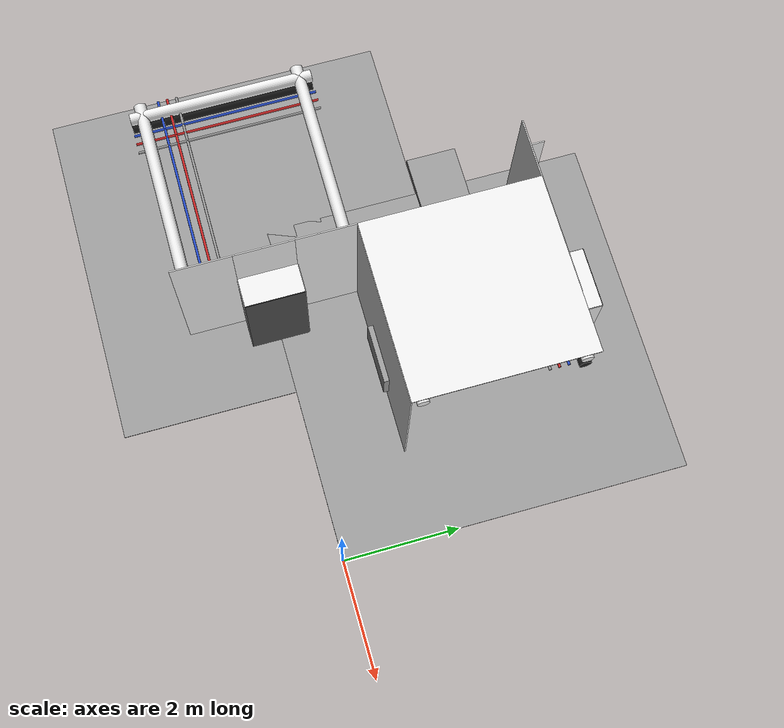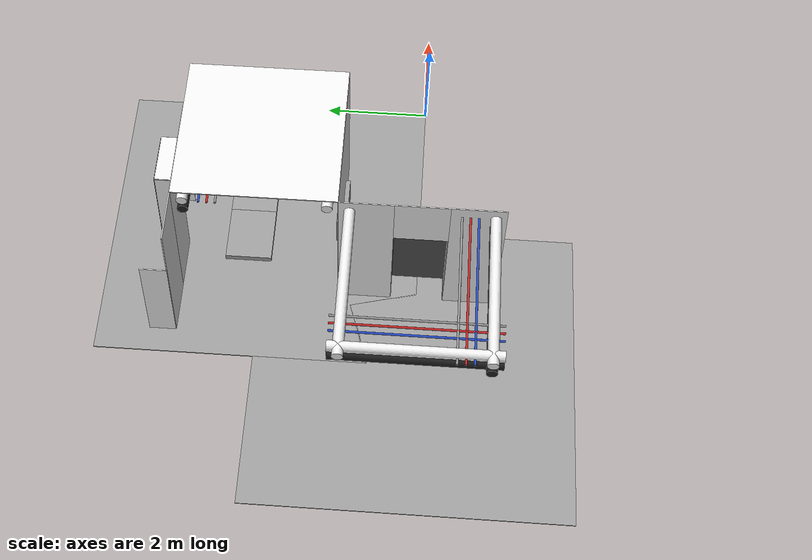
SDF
<sdf version="1.6">
 <world name="default">
  <model name="wall_left_-1_1_0_1">
   <static>1</static>
   <pose>-3.0 1.5 1.5 0.0 0.0 3.14</pose>
   <link name="link">
    <collision name="collision"><geometry><box><size>3.0 0.02 3.0</size></box></geometry></collision>
    <visual name="visual">
     <material>
      <script><name>Gazebo/White</name><uri>file://media/materials/scripts/gazebo.material</uri></script>
     </material>
     <geometry><box><size>3.0 0.02 3.0</size></box></geometry>
    </visual>
   </link>
  </model>
  <model name="wall_top_-1_1_0_1">
   <static>1</static>
   <pose>-3.0 3.0 3.0 1.57 0.0 1.57</pose>
   <link name="link">
    <collision name="collision"><geometry><box><size>3.0 0.02 3.0</size></box></geometry></collision>
    <visual name="visual">
     <material>
      <script><name>Gazebo/White</name><uri>file://media/materials/scripts/gazebo.material</uri></script>
     </material>
     <geometry><box><size>3.0 0.02 3.0</size></box></geometry>
    </visual>
   </link>
  </model>
  <model name="ceiling_1_-1_1_0_1">
   <pose>-3.0 3.0 2.55 0.0 0.0 1.57</pose>
   <link name="link_1">
    <visual name="visual">
     <geometry><box><size>0.8 1 0.1</size></box></geometry>
     <material>
      <script><uri>file://media/materials/scripts/gazebo.material</uri><name>Gazebo/Grey</name></script>
     </material>
    </visual>
    <collision name="collision"><geometry><box><size>0.8 1 0.1</size></box></geometry></collision>
   </link>
   <static>1</static>
  </model>
  <model name="ceiling_1_-1_1_2_1">
   <pose>-4.0 3.0 2.55 0.0 0.0 1.57</pose>
   <link name="link_1">
    <visual name="visual">
     <geometry><box><size>0.8 1 0.1</size></box></geometry>
     <material>
      <script><uri>file://media/materials/scripts/gazebo.material</uri><name>Gazebo/Grey</name></script>
     </material>
    </visual>
    <collision name="collision"><geometry><box><size>0.8 1 0.1</size></box></geometry></collision>
   </link>
   <static>1</static>
  </model>
  <model name="white_pipe_left_-1_1_0_1">
   <static>1</static>
   <pose>-3.0 3.0 2.76 0.0 0.0 1.57</pose>
   <link name="link_0">
    <visual name="visual">
     <pose>-1.3 0 0 1.57 0 0</pose>
     <geometry><cylinder><radius>0.1</radius><length>3.0</length></cylinder></geometry>
     <material>
      <script><uri>file://media/materials/scripts/gazebo.material</uri><name>Gazebo/White</name></script>
     </material>
    </visual>
    <collision name="collision">
     <pose>-1.3 0 0 1.57 0 0</pose>
     <geometry><cylinder><radius>0.1</radius><length>3.0</length></cylinder></geometry>
    </collision>
   </link>
  </model>
  <model name="white_pipe_right_-1_1_0_1">
   <static>1</static>
   <pose>-3.0 3.0 2.76 0.0 0.0 1.57</pose>
   <link name="link_0">
    <visual name="visual">
     <pose>1.3 0 0 1.57 0 0</pose>
     <geometry><cylinder><radius>0.1</radius><length>3.0</length></cylinder></geometry>
     <material>
      <script><uri>file://media/materials/scripts/gazebo.material</uri><name>Gazebo/White</name></script>
     </material>
    </visual>
    <collision name="collision">
     <pose>1.3 0 0 1.57 0 0</pose>
     <geometry><cylinder><radius>0.1</radius><length>3.0</length></cylinder></geometry>
    </collision>
   </link>
  </model>
  <model name="black_pipe_right_-1_1_0_1">
   <static>1</static>
   <pose>-3.0 3.0 2.76 0.0 0.0 1.57</pose>
   <link name="link_0">
    <visual name="visual">
     <pose>1.3 0 -0.25 1.57 0 0</pose>
     <geometry><cylinder><radius>0.1</radius><length>3.0</length></cylinder></geometry>
     <material>
      <script><uri>file://media/materials/scripts/gazebo.material</uri><name>Gazebo/Black</name></script>
     </material>
    </visual>
    <collision name="collision">
     <pose>1.3 0 -0.25 1.57 0 0</pose>
     <geometry><cylinder><radius>0.1</radius><length>3.0</length></cylinder></geometry>
    </collision>
   </link>
  </model>
  <model name="grey_pipe_right_-1_1_0_1">
   <static>1</static>
   <pose>-3.0 3.0 2.76 0.0 0.0 1.57</pose>
   <link name="link_0">
    <visual name="visual">
     <pose>0.7 0 0 1.57 0 0</pose>
     <geometry><cylinder><radius>0.02</radius><length>3.0</length></cylinder></geometry>
     <material>
      <script><uri>file://media/materials/scripts/gazebo.material</uri><name>Gazebo/Grey</name></script>
     </material>
    </visual>
    <collision name="collision">
     <pose>0.7 0 0 1.57 0 0</pose>
     <geometry><cylinder><radius>0.02</radius><length>3.0</length></cylinder></geometry>
    </collision>
   </link>
  </model>
  <model name="red_pipe_right_-1_1_0_1">
   <static>1</static>
   <pose>-3.0 3.0 2.76 0.0 0.0 1.57</pose>
   <link name="link_0">
    <visual name="visual">
     <pose>0.85 0 0 1.57 0 0</pose>
     <geometry><cylinder><radius>0.02</radius><length>3.0</length></cylinder></geometry>
     <material>
      <script><uri>file://media/materials/scripts/gazebo.material</uri><name>Gazebo/Red</name></script>
     </material>
    </visual>
    <collision name="collision">
     <pose>0.85 0 0 1.57 0 0</pose>
     <geometry><cylinder><radius>0.02</radius><length>3.0</length></cylinder></geometry>
    </collision>
   </link>
  </model>
  <model name="blue_pipe_right_-1_1_0_1">
   <static>1</static>
   <pose>-3.0 3.0 2.76 0.0 0.0 1.57</pose>
   <link name="link_0">
    <visual name="visual">
     <pose>1 0 0 1.57 0 0</pose>
     <geometry><cylinder><radius>0.02</radius><length>3.0</length></cylinder></geometry>
     <material>
      <script><uri>file://media/materials/scripts/gazebo.material</uri><name>Gazebo/Blue</name></script>
     </material>
    </visual>
    <collision name="collision">
     <pose>1 0 0 1.57 0 0</pose>
     <geometry><cylinder><radius>0.02</radius><length>3.0</length></cylinder></geometry>
    </collision>
   </link>
  </model>
  <model name="wall_bottom_-1_1_0_1">
   <static>1</static>
   <pose>-3.0 3.0 0.0 0.0 0.0 1.57</pose>
   <link name="link">
    <collision name="collision"><geometry><box><size>6.0 6.0 0.02</size></box></geometry></collision>
    <visual name="visual">
     <material>
      <script><name>Gazebo/Grey</name><uri>file://media/materials/scripts/gazebo.material</uri></script>
     </material>
     <geometry><box><size>6.0 6.0 0.02</size></box></geometry>
    </visual>
   </link>
  </model>
  <model name="wall_right_front_left_-1_1_0_1">
   <static>1</static>
   <pose>-4.0 4.5 1.5 0.0 0.0 3.14</pose>
   <link name="link">
    <collision name="collision"><geometry><box><size>1.0 0.02 3.0</size></box></geometry></collision>
    <visual name="visual">
     <material>
      <script><name>Gazebo/White</name><uri>file://media/materials/scripts/gazebo.material</uri></script>
     </material>
     <geometry><box><size>1.0 0.02 3.0</size></box></geometry>
    </visual>
   </link>
  </model>
  <model name="wall_right_front_up_-1_1_0_1">
   <static>1</static>
   <pose>-3.0 4.5 2.5 0.0 0.0 3.14</pose>
   <link name="link">
    <collision name="collision"><geometry><box><size>1.0 0.02 1.0</size></box></geometry></collision>
    <visual name="visual">
     <material>
      <script><name>Gazebo/White</name><uri>file://media/materials/scripts/gazebo.material</uri></script>
     </material>
     <geometry><box><size>1.0 0.02 1.0</size></box></geometry>
    </visual>
   </link>
  </model>
  <model name="wall_right_inside_back_-1_1_0_1">
   <static>1</static>
   <pose>-3.0 5.0 1.0 0.0 0.0 3.14</pose>
   <link name="link">
    <collision name="collision"><geometry><box><size>1 0.02 2</size></box></geometry></collision>
    <visual name="visual">
     <material>
      <script><name>Gazebo/DarkGrey</name><uri>file://media/materials/scripts/gazebo.material</uri></script>
     </material>
     <geometry><box><size>1 0.02 2</size></box></geometry>
    </visual>
   </link>
  </model>
  <model name="wall_right_inside_left_-1_1_0_1">
   <static>1</static>
   <pose>-3.5 4.75 1.0 0.0 0.0 1.57</pose>
   <link name="link">
    <collision name="collision"><geometry><box><size>0.5 0.02 2</size></box></geometry></collision>
    <visual name="visual">
     <material>
      <script><name>Gazebo/White</name><uri>file://media/materials/scripts/gazebo.material</uri></script>
     </material>
     <geometry><box><size>0.5 0.02 2</size></box></geometry>
    </visual>
   </link>
  </model>
  <model name="wall_right_inside_right_-1_1_0_1">
   <static>1</static>
   <pose>-2.5 4.75 1.0 0.0 0.0 1.57</pose>
   <link name="link">
    <collision name="collision"><geometry><box><size>0.5 0.02 2</size></box></geometry></collision>
    <visual name="visual">
     <material>
      <script><name>Gazebo/White</name><uri>file://media/materials/scripts/gazebo.material</uri></script>
     </material>
     <geometry><box><size>0.5 0.02 2</size></box></geometry>
    </visual>
   </link>
  </model>
  <model name="wall_right_inside_top_-1_1_0_1">
   <static>1</static>
   <pose>-3.0 4.75 2.0 1.57 0.0 3.14</pose>
   <link name="link">
    <collision name="collision"><geometry><box><size>1 0.02 0.5</size></box></geometry></collision>
    <visual name="visual">
     <material>
      <script><name>Gazebo/White</name><uri>file://media/materials/scripts/gazebo.material</uri></script>
     </material>
     <geometry><box><size>1 0.02 0.5</size></box></geometry>
    </visual>
   </link>
  </model>
  <model name="panel_-1_1_0_1">
   <static>1</static>
   <pose>-3.0 1.5 0.66 0.0 0.0 1.57</pose>
   <link name="link">
    <collision name="collision"><geometry><box><size>0.2 1 0.6</size></box></geometry></collision>
    <visual name="visual">
     <material>
      <script><name>Gazebo/Grey</name><uri>file://media/materials/scripts/gazebo.material</uri></script>
     </material>
     <geometry><box><size>0.2 1 0.6</size></box></geometry>
    </visual>
   </link>
  </model>
  <model name="ceiling_1_-2_1_0_3">
   <pose>-5.0 3.0 2.55 0.0 0.0 1.57</pose>
   <link name="link_1">
    <visual name="visual">
     <geometry><box><size>0.8 1 0.1</size></box></geometry>
     <material>
      <script><uri>file://media/materials/scripts/gazebo.material</uri><name>Gazebo/Grey</name></script>
     </material>
    </visual>
    <collision name="collision"><geometry><box><size>0.8 1 0.1</size></box></geometry></collision>
   </link>
   <static>1</static>
  </model>
  <model name="wall_right_front_right_-2_1_0_3">
   <static>1</static>
   <pose>-5.0 4.5 1.5 0.0 0.0 3.14</pose>
   <link name="link">
    <collision name="collision"><geometry><box><size>1.0 0.02 3.0</size></box></geometry></collision>
    <visual name="visual">
     <material>
      <script><name>Gazebo/White</name><uri>file://media/materials/scripts/gazebo.material</uri></script>
     </material>
     <geometry><box><size>1.0 0.02 3.0</size></box></geometry>
    </visual>
   </link>
  </model>
  <model name="wall_right_inside_right_-2_1_0_3">
   <static>1</static>
   <pose>-5.5 4.75 1.0 0.0 0.0 1.57</pose>
   <link name="link">
    <collision name="collision"><geometry><box><size>0.5 0.02 2</size></box></geometry></collision>
    <visual name="visual">
     <material>
      <script><name>Gazebo/White</name><uri>file://media/materials/scripts/gazebo.material</uri></script>
     </material>
     <geometry><box><size>0.5 0.02 2</size></box></geometry>
    </visual>
   </link>
  </model>
  <model name="white_pipe_right_-2_0_0_2">
   <static>1</static>
   <pose>-6.0 0.0 2.76 0.0 0.0 3.14</pose>
   <link name="link_0">
    <visual name="visual">
     <pose>1.3 0 0 1.57 0 0</pose>
     <geometry><cylinder><radius>0.1</radius><length>3.0</length></cylinder></geometry>
     <material>
      <script><uri>file://media/materials/scripts/gazebo.material</uri><name>Gazebo/White</name></script>
     </material>
    </visual>
    <collision name="collision">
     <pose>1.3 0 0 1.57 0 0</pose>
     <geometry><cylinder><radius>0.1</radius><length>3.0</length></cylinder></geometry>
    </collision>
   </link>
  </model>
  <model name="black_pipe_right_-2_0_0_2">
   <static>1</static>
   <pose>-6.0 0.0 2.76 0.0 0.0 3.14</pose>
   <link name="link_0">
    <visual name="visual">
     <pose>1.3 0 -0.25 1.57 0 0</pose>
     <geometry><cylinder><radius>0.1</radius><length>3.0</length></cylinder></geometry>
     <material>
      <script><uri>file://media/materials/scripts/gazebo.material</uri><name>Gazebo/Black</name></script>
     </material>
    </visual>
    <collision name="collision">
     <pose>1.3 0 -0.25 1.57 0 0</pose>
     <geometry><cylinder><radius>0.1</radius><length>3.0</length></cylinder></geometry>
    </collision>
   </link>
  </model>
  <model name="grey_pipe_right_-2_0_0_2">
   <static>1</static>
   <pose>-6.0 0.0 2.76 0.0 0.0 3.14</pose>
   <link name="link_0">
    <visual name="visual">
     <pose>0.7 0 0 1.57 0 0</pose>
     <geometry><cylinder><radius>0.02</radius><length>3.0</length></cylinder></geometry>
     <material>
      <script><uri>file://media/materials/scripts/gazebo.material</uri><name>Gazebo/Grey</name></script>
     </material>
    </visual>
    <collision name="collision">
     <pose>0.7 0 0 1.57 0 0</pose>
     <geometry><cylinder><radius>0.02</radius><length>3.0</length></cylinder></geometry>
    </collision>
   </link>
  </model>
  <model name="red_pipe_right_-2_0_0_2">
   <static>1</static>
   <pose>-6.0 0.0 2.76 0.0 0.0 3.14</pose>
   <link name="link_0">
    <visual name="visual">
     <pose>0.85 0 0 1.57 0 0</pose>
     <geometry><cylinder><radius>0.02</radius><length>3.0</length></cylinder></geometry>
     <material>
      <script><uri>file://media/materials/scripts/gazebo.material</uri><name>Gazebo/Red</name></script>
     </material>
    </visual>
    <collision name="collision">
     <pose>0.85 0 0 1.57 0 0</pose>
     <geometry><cylinder><radius>0.02</radius><length>3.0</length></cylinder></geometry>
    </collision>
   </link>
  </model>
  <model name="blue_pipe_right_-2_0_0_2">
   <static>1</static>
   <pose>-6.0 0.0 2.76 0.0 0.0 3.14</pose>
   <link name="link_0">
    <visual name="visual">
     <pose>1 0 0 1.57 0 0</pose>
     <geometry><cylinder><radius>0.02</radius><length>3.0</length></cylinder></geometry>
     <material>
      <script><uri>file://media/materials/scripts/gazebo.material</uri><name>Gazebo/Blue</name></script>
     </material>
    </visual>
    <collision name="collision">
     <pose>1 0 0 1.57 0 0</pose>
     <geometry><cylinder><radius>0.02</radius><length>3.0</length></cylinder></geometry>
    </collision>
   </link>
  </model>
  <model name="white_pipe_left_1_-2_0_0_2">
   <static>1</static>
   <pose>-6.0 0.0 2.76 0.0 0.0 4.71</pose>
   <link name="link_0">
    <visual name="visual">
     <pose>-1.3 0 0 1.57 0 0</pose>
     <geometry><cylinder><radius>0.1</radius><length>3.0</length></cylinder></geometry>
     <material>
      <script><uri>file://media/materials/scripts/gazebo.material</uri><name>Gazebo/White</name></script>
     </material>
    </visual>
    <collision name="collision">
     <pose>-1.3 0 0 1.57 0 0</pose>
     <geometry><cylinder><radius>0.1</radius><length>3.0</length></cylinder></geometry>
    </collision>
   </link>
  </model>
  <model name="white_pipe_right_1_-2_0_0_2">
   <static>1</static>
   <pose>-6.0 0.0 2.76 0.0 0.0 4.71</pose>
   <link name="link_0">
    <visual name="visual">
     <pose>1.3 0 0 1.57 0 0</pose>
     <geometry><cylinder><radius>0.1</radius><length>3.0</length></cylinder></geometry>
     <material>
      <script><uri>file://media/materials/scripts/gazebo.material</uri><name>Gazebo/White</name></script>
     </material>
    </visual>
    <collision name="collision">
     <pose>1.3 0 0 1.57 0 0</pose>
     <geometry><cylinder><radius>0.1</radius><length>3.0</length></cylinder></geometry>
    </collision>
   </link>
  </model>
  <model name="black_pipe_right_1_-2_0_0_2">
   <static>1</static>
   <pose>-6.0 0.0 2.76 0.0 0.0 4.71</pose>
   <link name="link_0">
    <visual name="visual">
     <pose>1.3 0 -0.25 1.57 0 0</pose>
     <geometry><cylinder><radius>0.1</radius><length>3.0</length></cylinder></geometry>
     <material>
      <script><uri>file://media/materials/scripts/gazebo.material</uri><name>Gazebo/Black</name></script>
     </material>
    </visual>
    <collision name="collision">
     <pose>1.3 0 -0.25 1.57 0 0</pose>
     <geometry><cylinder><radius>0.1</radius><length>3.0</length></cylinder></geometry>
    </collision>
   </link>
  </model>
  <model name="grey_pipe_right_1_-2_0_0_2">
   <static>1</static>
   <pose>-6.0 0.0 2.76 0.0 0.0 4.71</pose>
   <link name="link_0">
    <visual name="visual">
     <pose>0.7 0 0 1.57 0 0</pose>
     <geometry><cylinder><radius>0.02</radius><length>3.0</length></cylinder></geometry>
     <material>
      <script><uri>file://media/materials/scripts/gazebo.material</uri><name>Gazebo/Grey</name></script>
     </material>
    </visual>
    <collision name="collision">
     <pose>0.7 0 0 1.57 0 0</pose>
     <geometry><cylinder><radius>0.02</radius><length>3.0</length></cylinder></geometry>
    </collision>
   </link>
  </model>
  <model name="red_pipe_right_1_-2_0_0_2">
   <static>1</static>
   <pose>-6.0 0.0 2.76 0.0 0.0 4.71</pose>
   <link name="link_0">
    <visual name="visual">
     <pose>0.85 0 0 1.57 0 0</pose>
     <geometry><cylinder><radius>0.02</radius><length>3.0</length></cylinder></geometry>
     <material>
      <script><uri>file://media/materials/scripts/gazebo.material</uri><name>Gazebo/Red</name></script>
     </material>
    </visual>
    <collision name="collision">
     <pose>0.85 0 0 1.57 0 0</pose>
     <geometry><cylinder><radius>0.02</radius><length>3.0</length></cylinder></geometry>
    </collision>
   </link>
  </model>
  <model name="blue_pipe_right_1_-2_0_0_2">
   <static>1</static>
   <pose>-6.0 0.0 2.76 0.0 0.0 4.71</pose>
   <link name="link_0">
    <visual name="visual">
     <pose>1 0 0 1.57 0 0</pose>
     <geometry><cylinder><radius>0.02</radius><length>3.0</length></cylinder></geometry>
     <material>
      <script><uri>file://media/materials/scripts/gazebo.material</uri><name>Gazebo/Blue</name></script>
     </material>
    </visual>
    <collision name="collision">
     <pose>1 0 0 1.57 0 0</pose>
     <geometry><cylinder><radius>0.02</radius><length>3.0</length></cylinder></geometry>
    </collision>
   </link>
  </model>
  <model name="wall_left_front_left_-2_0_0_2">
   <static>1</static>
   <pose>-4.5 -1.0 1.5 0.0 0.0 4.71</pose>
   <link name="link">
    <collision name="collision"><geometry><box><size>1.0 0.02 3.0</size></box></geometry></collision>
    <visual name="visual">
     <material>
      <script><name>Gazebo/White</name><uri>file://media/materials/scripts/gazebo.material</uri></script>
     </material>
     <geometry><box><size>1.0 0.02 3.0</size></box></geometry>
    </visual>
   </link>
  </model>
  <model name="wall_left_front_right_-2_0_0_2">
   <static>1</static>
   <pose>-4.5 1.0 1.5 0.0 0.0 4.71</pose>
   <link name="link">
    <collision name="collision"><geometry><box><size>1.0 0.02 3.0</size></box></geometry></collision>
    <visual name="visual">
     <material>
      <script><name>Gazebo/White</name><uri>file://media/materials/scripts/gazebo.material</uri></script>
     </material>
     <geometry><box><size>1.0 0.02 3.0</size></box></geometry>
    </visual>
   </link>
  </model>
  <model name="wall_left_front_up_-2_0_0_2">
   <static>1</static>
   <pose>-4.5 0.0 2.5 0.0 0.0 4.71</pose>
   <link name="link">
    <collision name="collision"><geometry><box><size>1.0 0.02 1.0</size></box></geometry></collision>
    <visual name="visual">
     <material>
      <script><name>Gazebo/White</name><uri>file://media/materials/scripts/gazebo.material</uri></script>
     </material>
     <geometry><box><size>1.0 0.02 1.0</size></box></geometry>
    </visual>
   </link>
  </model>
  <model name="wall_left_inside_back_-2_0_0_2">
   <static>1</static>
   <pose>-4.0 0.0 1.0 0.0 0.0 4.71</pose>
   <link name="link">
    <collision name="collision"><geometry><box><size>1 0.02 2</size></box></geometry></collision>
    <visual name="visual">
     <material>
      <script><name>Gazebo/DarkGrey</name><uri>file://media/materials/scripts/gazebo.material</uri></script>
     </material>
     <geometry><box><size>1 0.02 2</size></box></geometry>
    </visual>
   </link>
  </model>
  <model name="wall_left_inside_left_-2_0_0_2">
   <static>1</static>
   <pose>-4.25 -0.5 1.0 0.0 0.0 3.14</pose>
   <link name="link">
    <collision name="collision"><geometry><box><size>0.5 0.02 2</size></box></geometry></collision>
    <visual name="visual">
     <material>
      <script><name>Gazebo/White</name><uri>file://media/materials/scripts/gazebo.material</uri></script>
     </material>
     <geometry><box><size>0.5 0.02 2</size></box></geometry>
    </visual>
   </link>
  </model>
  <model name="wall_left_inside_right_-2_0_0_2">
   <static>1</static>
   <pose>-4.25 0.5 1.0 0.0 0.0 3.14</pose>
   <link name="link">
    <collision name="collision"><geometry><box><size>0.5 0.02 2</size></box></geometry></collision>
    <visual name="visual">
     <material>
      <script><name>Gazebo/White</name><uri>file://media/materials/scripts/gazebo.material</uri></script>
     </material>
     <geometry><box><size>0.5 0.02 2</size></box></geometry>
    </visual>
   </link>
  </model>
  <model name="wall_left_inside_top_-2_0_0_2">
   <static>1</static>
   <pose>-4.25 0.0 2.0 1.57 0.0 4.71</pose>
   <link name="link">
    <collision name="collision"><geometry><box><size>1 0.02 0.5</size></box></geometry></collision>
    <visual name="visual">
     <material>
      <script><name>Gazebo/White</name><uri>file://media/materials/scripts/gazebo.material</uri></script>
     </material>
     <geometry><box><size>1 0.02 0.5</size></box></geometry>
    </visual>
   </link>
  </model>
  <model name="wall_bottom_-2_0_0_2">
   <static>1</static>
   <pose>-6.0 0.0 0.0 0.0 0.0 3.14</pose>
   <link name="link">
    <collision name="collision"><geometry><box><size>6.0 6.0 0.02</size></box></geometry></collision>
    <visual name="visual">
     <material>
      <script><name>Gazebo/Grey</name><uri>file://media/materials/scripts/gazebo.material</uri></script>
     </material>
     <geometry><box><size>6.0 6.0 0.02</size></box></geometry>
    </visual>
   </link>
  </model>
 </world>
</sdf>
